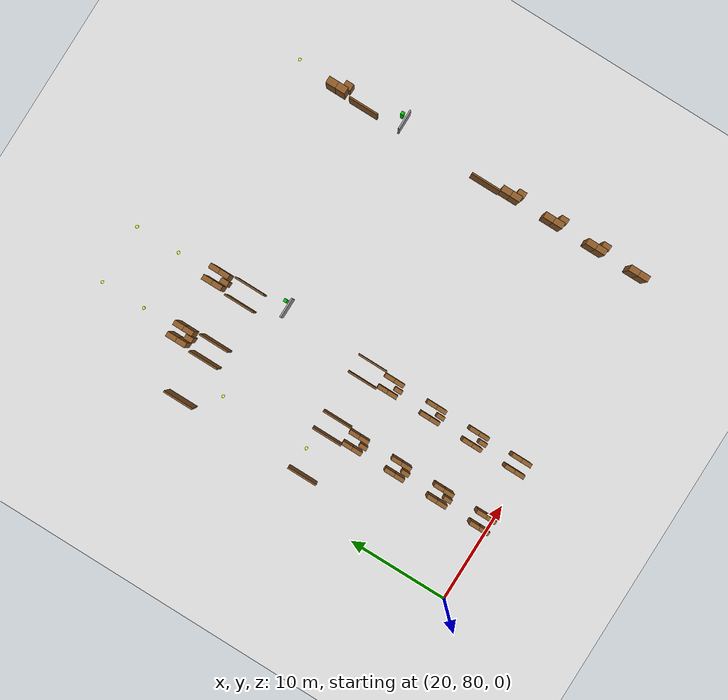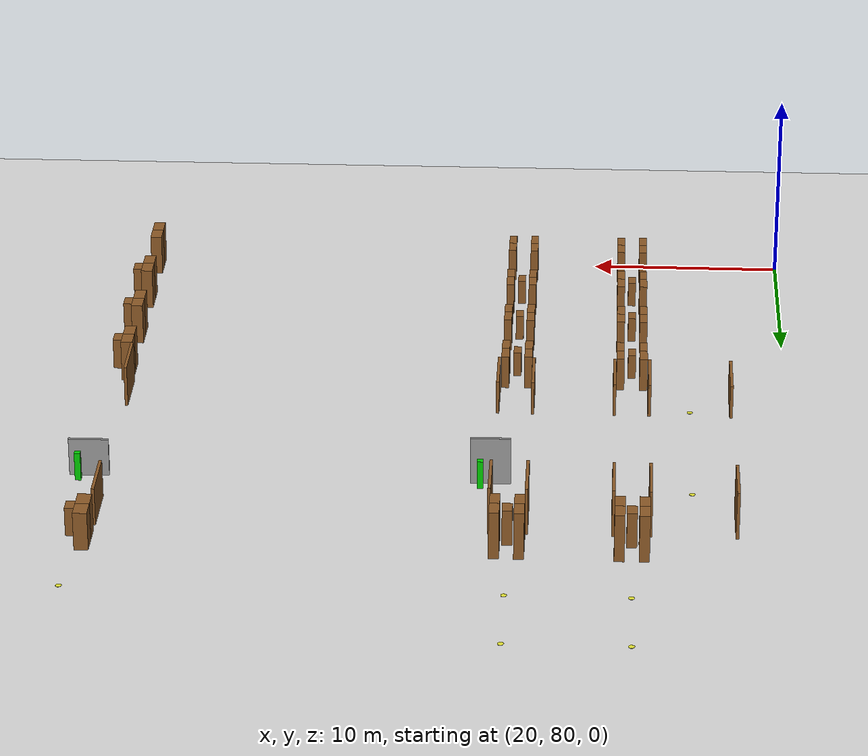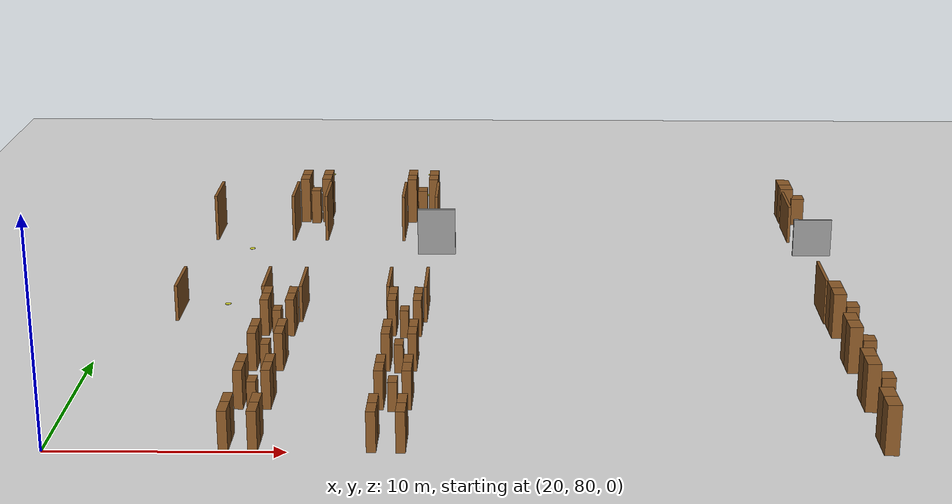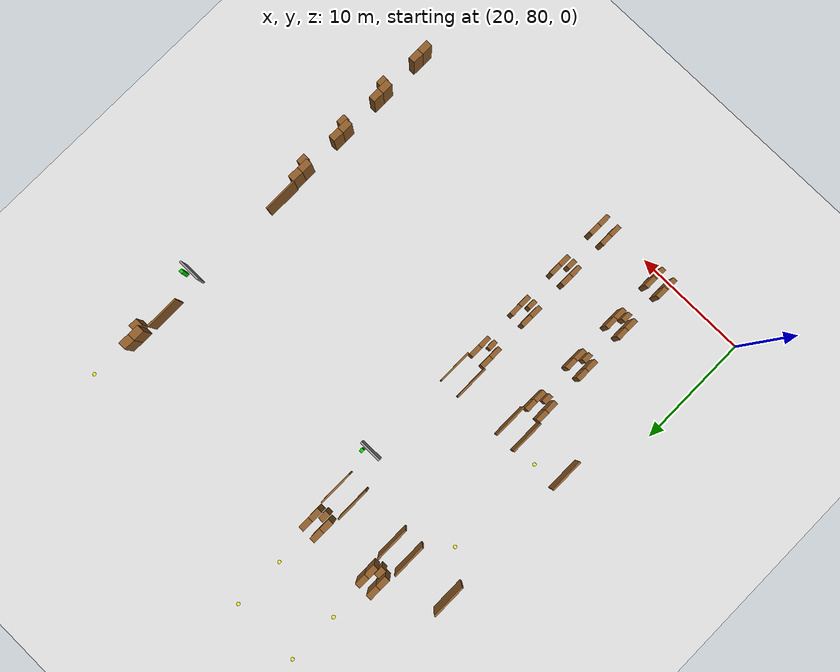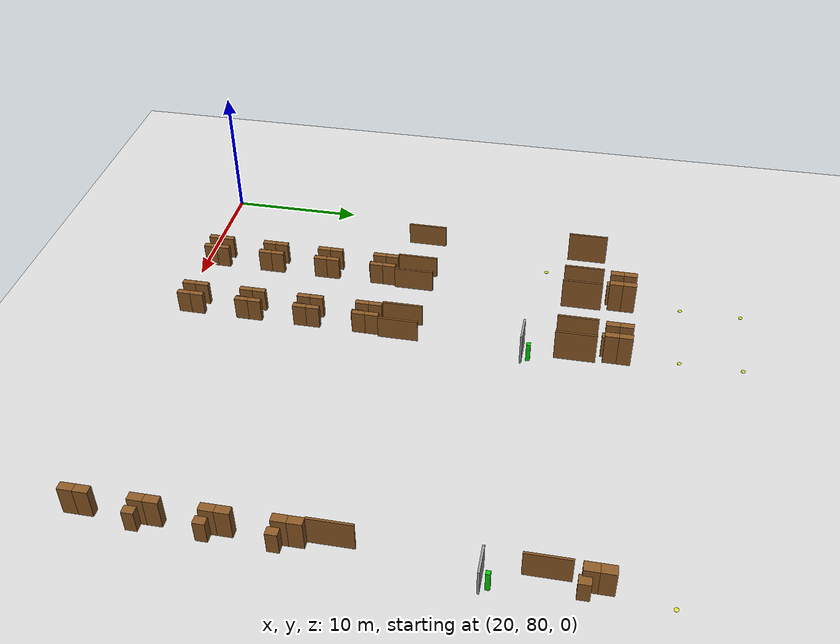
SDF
<sdf version="1.9">
 <world name="realistic_warehouse_150x200m">
  <model name="ground_plane">
   <static>true</static>
   <pose>68.5 102.0 0 0 0 0</pose>
   <link name="ground_link">
    <visual name="ground_visual">
     <geometry><box><size>127.0 194.0 0.01</size></box></geometry>
     <material><ambient>0.85 0.85 0.85 1.0</ambient><diffuse>0.85 0.85 0.85 1.0</diffuse></material>
    </visual>
    <collision name="ground_visual_collision">
     <geometry><box><size>127.0 194.0 0.01</size></box></geometry>
    </collision>
    <collision name="ground_collision">
     <geometry><plane><normal>0 0 1</normal><size>127.0 194.0</size></plane></geometry>
    </collision>
   </link>
  </model>
  <model name="dock_wall_Zone_D_C2_678">
   <static>true</static>
   <pose>35.0 106.2 1.25 0 0 0</pose>
   <link name="dock_wall_Zone_D_C2_678_link">
    <visual name="dock_wall_Zone_D_C2_678_vis">
     <geometry><box><size>2.0 0.15 2.5</size></box></geometry>
     <material><ambient>0.6 0.6 0.6 1.0</ambient><diffuse>0.6 0.6 0.6 1.0</diffuse></material>
    </visual>
    <collision name="dock_wall_Zone_D_C2_678_vis_collision">
     <geometry><box><size>2.0 0.15 2.5</size></box></geometry>
    </collision>
   </link>
  </model>
  <model name="charger_Zone_D_C2_679">
   <static>true</static>
   <pose>35.5 106.7 0.75 0 0 0</pose>
   <link name="charger_Zone_D_C2_679_link">
    <visual name="charger_Zone_D_C2_679_vis">
     <geometry><box><size>0.3 0.3 1.5</size></box></geometry>
     <material><ambient>0.0 0.8 0.0 1.0</ambient><diffuse>0.0 0.8 0.0 1.0</diffuse></material>
    </visual>
    <collision name="charger_Zone_D_C2_679_vis_collision">
     <geometry><box><size>0.3 0.3 1.5</size></box></geometry>
    </collision>
   </link>
  </model>
  <model name="cross_Zone_D_entry_680">
   <static>true</static>
   <pose>25.0 107.0 0.01 0 0 0</pose>
   <link name="cross_Zone_D_entry_680_link">
    <visual name="cross_Zone_D_entry_680_vis">
     <geometry><cylinder><radius>0.15</radius><length>0.02</length></cylinder></geometry>
     <material><ambient>0.9 0.9 0.2 1.0</ambient><diffuse>0.9 0.9 0.2 1.0</diffuse></material>
    </visual>
    <collision name="cross_Zone_D_entry_680_vis_collision">
     <geometry><cylinder><radius>0.15</radius><length>0.02</length></cylinder></geometry>
    </collision>
   </link>
  </model>
  <model name="aisle_R_Zone_D_A2_entry_722">
   <static>true</static>
   <pose>22.9 110.0 1.25 0 0 0</pose>
   <link name="aisle_R_Zone_D_A2_entry_722_link">
    <visual name="aisle_R_Zone_D_A2_entry_722_vis">
     <geometry><box><size>0.15 3.0 2.5</size></box></geometry>
     <material><ambient>0.55 0.35 0.15 1.0</ambient><diffuse>0.55 0.35 0.15 1.0</diffuse></material>
    </visual>
    <collision name="aisle_R_Zone_D_A2_entry_722_vis_collision">
     <geometry><box><size>0.15 3.0 2.5</size></box></geometry>
    </collision>
   </link>
  </model>
  <model name="aisle_L_Zone_D_A3_entry_741">
   <static>true</static>
   <pose>27.1 110.0 1.25 0 0 0</pose>
   <link name="aisle_L_Zone_D_A3_entry_741_link">
    <visual name="aisle_L_Zone_D_A3_entry_741_vis">
     <geometry><box><size>0.15 3.0 2.5</size></box></geometry>
     <material><ambient>0.55 0.35 0.15 1.0</ambient><diffuse>0.55 0.35 0.15 1.0</diffuse></material>
    </visual>
    <collision name="aisle_L_Zone_D_A3_entry_741_vis_collision">
     <geometry><box><size>0.15 3.0 2.5</size></box></geometry>
    </collision>
   </link>
  </model>
  <model name="aisle_R_Zone_D_A3_entry_742">
   <static>true</static>
   <pose>28.9 110.0 1.25 0 0 0</pose>
   <link name="aisle_R_Zone_D_A3_entry_742_link">
    <visual name="aisle_R_Zone_D_A3_entry_742_vis">
     <geometry><box><size>0.15 3.0 2.5</size></box></geometry>
     <material><ambient>0.55 0.35 0.15 1.0</ambient><diffuse>0.55 0.35 0.15 1.0</diffuse></material>
    </visual>
    <collision name="aisle_R_Zone_D_A3_entry_742_vis_collision">
     <geometry><box><size>0.15 3.0 2.5</size></box></geometry>
    </collision>
   </link>
  </model>
  <model name="rack_Zone_D_A3_S0_743">
   <static>true</static>
   <pose>27.4 112.5 1.25 0 0 0</pose>
   <link name="rack_Zone_D_A3_S0_743_link">
    <visual name="rack_Zone_D_A3_S0_743_vis">
     <geometry><box><size>0.5 1.0 2.5</size></box></geometry>
     <material><ambient>0.55 0.35 0.15 1.0</ambient><diffuse>0.55 0.35 0.15 1.0</diffuse></material>
    </visual>
    <collision name="rack_Zone_D_A3_S0_743_vis_collision">
     <geometry><box><size>0.5 1.0 2.5</size></box></geometry>
    </collision>
   </link>
  </model>
  <model name="rack_Zone_D_A3_S0_744">
   <static>true</static>
   <pose>27.4 113.5 1.25 0 0 0</pose>
   <link name="rack_Zone_D_A3_S0_744_link">
    <visual name="rack_Zone_D_A3_S0_744_vis">
     <geometry><box><size>0.5 1.0 2.5</size></box></geometry>
     <material><ambient>0.55 0.35 0.15 1.0</ambient><diffuse>0.55 0.35 0.15 1.0</diffuse></material>
    </visual>
    <collision name="rack_Zone_D_A3_S0_744_vis_collision">
     <geometry><box><size>0.5 1.0 2.5</size></box></geometry>
    </collision>
   </link>
  </model>
  <model name="rack_Zone_D_A3_S0_745">
   <static>true</static>
   <pose>28.6 112.5 1.25 0 0 0</pose>
   <link name="rack_Zone_D_A3_S0_745_link">
    <visual name="rack_Zone_D_A3_S0_745_vis">
     <geometry><box><size>0.5 1.0 2.5</size></box></geometry>
     <material><ambient>0.55 0.35 0.15 1.0</ambient><diffuse>0.55 0.35 0.15 1.0</diffuse></material>
    </visual>
    <collision name="rack_Zone_D_A3_S0_745_vis_collision">
     <geometry><box><size>0.5 1.0 2.5</size></box></geometry>
    </collision>
   </link>
  </model>
  <model name="rack_Zone_D_A3_S0_746">
   <static>true</static>
   <pose>28.6 113.5 1.25 0 0 0</pose>
   <link name="rack_Zone_D_A3_S0_746_link">
    <visual name="rack_Zone_D_A3_S0_746_vis">
     <geometry><box><size>0.5 1.0 2.5</size></box></geometry>
     <material><ambient>0.55 0.35 0.15 1.0</ambient><diffuse>0.55 0.35 0.15 1.0</diffuse></material>
    </visual>
    <collision name="rack_Zone_D_A3_S0_746_vis_collision">
     <geometry><box><size>0.5 1.0 2.5</size></box></geometry>
    </collision>
   </link>
  </model>
  <model name="rack_Zone_D_A3_S0_747">
   <static>true</static>
   <pose>28.0 112.2 0.9375 0 0 0</pose>
   <link name="rack_Zone_D_A3_S0_747_link">
    <visual name="rack_Zone_D_A3_S0_747_vis">
     <geometry><box><size>0.5 0.8 1.875</size></box></geometry>
     <material><ambient>0.55 0.35 0.15 1.0</ambient><diffuse>0.55 0.35 0.15 1.0</diffuse></material>
    </visual>
    <collision name="rack_Zone_D_A3_S0_747_vis_collision">
     <geometry><box><size>0.5 0.8 1.875</size></box></geometry>
    </collision>
   </link>
  </model>
  <model name="cross_Zone_D_A3_S1_748">
   <static>true</static>
   <pose>28.0 117.5 0.01 0 0 0</pose>
   <link name="cross_Zone_D_A3_S1_748_link">
    <visual name="cross_Zone_D_A3_S1_748_vis">
     <geometry><cylinder><radius>0.15</radius><length>0.02</length></cylinder></geometry>
     <material><ambient>0.9 0.9 0.2 1.0</ambient><diffuse>0.9 0.9 0.2 1.0</diffuse></material>
    </visual>
    <collision name="cross_Zone_D_A3_S1_748_vis_collision">
     <geometry><cylinder><radius>0.15</radius><length>0.02</length></cylinder></geometry>
    </collision>
   </link>
  </model>
  <model name="gap_Zone_D_A3_S2_749">
   <static>true</static>
   <pose>28.0 122.0 0.01 0 0 0</pose>
   <link name="gap_Zone_D_A3_S2_749_link">
    <visual name="gap_Zone_D_A3_S2_749_vis">
     <geometry><cylinder><radius>0.15</radius><length>0.02</length></cylinder></geometry>
     <material><ambient>0.9 0.9 0.2 1.0</ambient><diffuse>0.9 0.9 0.2 1.0</diffuse></material>
    </visual>
    <collision name="gap_Zone_D_A3_S2_749_vis_collision">
     <geometry><cylinder><radius>0.15</radius><length>0.02</length></cylinder></geometry>
    </collision>
   </link>
  </model>
  <model name="aisle_L_Zone_D_A4_entry_761">
   <static>true</static>
   <pose>33.1 110.0 1.25 0 0 0</pose>
   <link name="aisle_L_Zone_D_A4_entry_761_link">
    <visual name="aisle_L_Zone_D_A4_entry_761_vis">
     <geometry><box><size>0.15 3.0 2.5</size></box></geometry>
     <material><ambient>0.55 0.35 0.15 1.0</ambient><diffuse>0.55 0.35 0.15 1.0</diffuse></material>
    </visual>
    <collision name="aisle_L_Zone_D_A4_entry_761_vis_collision">
     <geometry><box><size>0.15 3.0 2.5</size></box></geometry>
    </collision>
   </link>
  </model>
  <model name="aisle_R_Zone_D_A4_entry_762">
   <static>true</static>
   <pose>34.9 110.0 1.25 0 0 0</pose>
   <link name="aisle_R_Zone_D_A4_entry_762_link">
    <visual name="aisle_R_Zone_D_A4_entry_762_vis">
     <geometry><box><size>0.15 3.0 2.5</size></box></geometry>
     <material><ambient>0.55 0.35 0.15 1.0</ambient><diffuse>0.55 0.35 0.15 1.0</diffuse></material>
    </visual>
    <collision name="aisle_R_Zone_D_A4_entry_762_vis_collision">
     <geometry><box><size>0.15 3.0 2.5</size></box></geometry>
    </collision>
   </link>
  </model>
  <model name="rack_Zone_D_A4_S0_763">
   <static>true</static>
   <pose>33.4 112.5 1.25 0 0 0</pose>
   <link name="rack_Zone_D_A4_S0_763_link">
    <visual name="rack_Zone_D_A4_S0_763_vis">
     <geometry><box><size>0.5 1.0 2.5</size></box></geometry>
     <material><ambient>0.55 0.35 0.15 1.0</ambient><diffuse>0.55 0.35 0.15 1.0</diffuse></material>
    </visual>
    <collision name="rack_Zone_D_A4_S0_763_vis_collision">
     <geometry><box><size>0.5 1.0 2.5</size></box></geometry>
    </collision>
   </link>
  </model>
  <model name="rack_Zone_D_A4_S0_764">
   <static>true</static>
   <pose>33.4 113.5 1.25 0 0 0</pose>
   <link name="rack_Zone_D_A4_S0_764_link">
    <visual name="rack_Zone_D_A4_S0_764_vis">
     <geometry><box><size>0.5 1.0 2.5</size></box></geometry>
     <material><ambient>0.55 0.35 0.15 1.0</ambient><diffuse>0.55 0.35 0.15 1.0</diffuse></material>
    </visual>
    <collision name="rack_Zone_D_A4_S0_764_vis_collision">
     <geometry><box><size>0.5 1.0 2.5</size></box></geometry>
    </collision>
   </link>
  </model>
  <model name="rack_Zone_D_A4_S0_765">
   <static>true</static>
   <pose>34.6 112.5 1.25 0 0 0</pose>
   <link name="rack_Zone_D_A4_S0_765_link">
    <visual name="rack_Zone_D_A4_S0_765_vis">
     <geometry><box><size>0.5 1.0 2.5</size></box></geometry>
     <material><ambient>0.55 0.35 0.15 1.0</ambient><diffuse>0.55 0.35 0.15 1.0</diffuse></material>
    </visual>
    <collision name="rack_Zone_D_A4_S0_765_vis_collision">
     <geometry><box><size>0.5 1.0 2.5</size></box></geometry>
    </collision>
   </link>
  </model>
  <model name="rack_Zone_D_A4_S0_766">
   <static>true</static>
   <pose>34.6 113.5 1.25 0 0 0</pose>
   <link name="rack_Zone_D_A4_S0_766_link">
    <visual name="rack_Zone_D_A4_S0_766_vis">
     <geometry><box><size>0.5 1.0 2.5</size></box></geometry>
     <material><ambient>0.55 0.35 0.15 1.0</ambient><diffuse>0.55 0.35 0.15 1.0</diffuse></material>
    </visual>
    <collision name="rack_Zone_D_A4_S0_766_vis_collision">
     <geometry><box><size>0.5 1.0 2.5</size></box></geometry>
    </collision>
   </link>
  </model>
  <model name="rack_Zone_D_A4_S0_767">
   <static>true</static>
   <pose>34.0 112.2 0.9375 0 0 0</pose>
   <link name="rack_Zone_D_A4_S0_767_link">
    <visual name="rack_Zone_D_A4_S0_767_vis">
     <geometry><box><size>0.5 0.8 1.875</size></box></geometry>
     <material><ambient>0.55 0.35 0.15 1.0</ambient><diffuse>0.55 0.35 0.15 1.0</diffuse></material>
    </visual>
    <collision name="rack_Zone_D_A4_S0_767_vis_collision">
     <geometry><box><size>0.5 0.8 1.875</size></box></geometry>
    </collision>
   </link>
  </model>
  <model name="cross_Zone_D_A4_S1_768">
   <static>true</static>
   <pose>34.0 117.5 0.01 0 0 0</pose>
   <link name="cross_Zone_D_A4_S1_768_link">
    <visual name="cross_Zone_D_A4_S1_768_vis">
     <geometry><cylinder><radius>0.15</radius><length>0.02</length></cylinder></geometry>
     <material><ambient>0.9 0.9 0.2 1.0</ambient><diffuse>0.9 0.9 0.2 1.0</diffuse></material>
    </visual>
    <collision name="cross_Zone_D_A4_S1_768_vis_collision">
     <geometry><cylinder><radius>0.15</radius><length>0.02</length></cylinder></geometry>
    </collision>
   </link>
  </model>
  <model name="gap_Zone_D_A4_S2_769">
   <static>true</static>
   <pose>34.0 122.0 0.01 0 0 0</pose>
   <link name="gap_Zone_D_A4_S2_769_link">
    <visual name="gap_Zone_D_A4_S2_769_vis">
     <geometry><cylinder><radius>0.15</radius><length>0.02</length></cylinder></geometry>
     <material><ambient>0.9 0.9 0.2 1.0</ambient><diffuse>0.9 0.9 0.2 1.0</diffuse></material>
    </visual>
    <collision name="gap_Zone_D_A4_S2_769_vis_collision">
     <geometry><cylinder><radius>0.15</radius><length>0.02</length></cylinder></geometry>
    </collision>
   </link>
  </model>
  <model name="dock_wall_Zone_E_C1_781">
   <static>true</static>
   <pose>55.0 106.2 1.0 0 0 0</pose>
   <link name="dock_wall_Zone_E_C1_781_link">
    <visual name="dock_wall_Zone_E_C1_781_vis">
     <geometry><box><size>2.0 0.15 2.0</size></box></geometry>
     <material><ambient>0.6 0.6 0.6 1.0</ambient><diffuse>0.6 0.6 0.6 1.0</diffuse></material>
    </visual>
    <collision name="dock_wall_Zone_E_C1_781_vis_collision">
     <geometry><box><size>2.0 0.15 2.0</size></box></geometry>
    </collision>
   </link>
  </model>
  <model name="charger_Zone_E_C1_782">
   <static>true</static>
   <pose>55.5 106.7 0.75 0 0 0</pose>
   <link name="charger_Zone_E_C1_782_link">
    <visual name="charger_Zone_E_C1_782_vis">
     <geometry><box><size>0.3 0.3 1.5</size></box></geometry>
     <material><ambient>0.0 0.8 0.0 1.0</ambient><diffuse>0.0 0.8 0.0 1.0</diffuse></material>
    </visual>
    <collision name="charger_Zone_E_C1_782_vis_collision">
     <geometry><box><size>0.3 0.3 1.5</size></box></geometry>
    </collision>
   </link>
  </model>
  <model name="aisle_L_Zone_E_A0_entry_786">
   <static>true</static>
   <pose>54.1 110.0 1.0 0 0 0</pose>
   <link name="aisle_L_Zone_E_A0_entry_786_link">
    <visual name="aisle_L_Zone_E_A0_entry_786_vis">
     <geometry><box><size>0.15 3.0 2.0</size></box></geometry>
     <material><ambient>0.55 0.35 0.15 1.0</ambient><diffuse>0.55 0.35 0.15 1.0</diffuse></material>
    </visual>
    <collision name="aisle_L_Zone_E_A0_entry_786_vis_collision">
     <geometry><box><size>0.15 3.0 2.0</size></box></geometry>
    </collision>
   </link>
  </model>
  <model name="rack_Zone_E_A0_S0_788">
   <static>true</static>
   <pose>54.4 112.5 1.0 0 0 0</pose>
   <link name="rack_Zone_E_A0_S0_788_link">
    <visual name="rack_Zone_E_A0_S0_788_vis">
     <geometry><box><size>0.7 1.0 2.0</size></box></geometry>
     <material><ambient>0.55 0.35 0.15 1.0</ambient><diffuse>0.55 0.35 0.15 1.0</diffuse></material>
    </visual>
    <collision name="rack_Zone_E_A0_S0_788_vis_collision">
     <geometry><box><size>0.7 1.0 2.0</size></box></geometry>
    </collision>
   </link>
  </model>
  <model name="rack_Zone_E_A0_S0_789">
   <static>true</static>
   <pose>54.4 113.5 1.0 0 0 0</pose>
   <link name="rack_Zone_E_A0_S0_789_link">
    <visual name="rack_Zone_E_A0_S0_789_vis">
     <geometry><box><size>0.7 1.0 2.0</size></box></geometry>
     <material><ambient>0.55 0.35 0.15 1.0</ambient><diffuse>0.55 0.35 0.15 1.0</diffuse></material>
    </visual>
    <collision name="rack_Zone_E_A0_S0_789_vis_collision">
     <geometry><box><size>0.7 1.0 2.0</size></box></geometry>
    </collision>
   </link>
  </model>
  <model name="rack_Zone_E_A0_S0_792">
   <static>true</static>
   <pose>55.0 112.2 0.75 0 0 0</pose>
   <link name="rack_Zone_E_A0_S0_792_link">
    <visual name="rack_Zone_E_A0_S0_792_vis">
     <geometry><box><size>0.7 0.8 1.5</size></box></geometry>
     <material><ambient>0.55 0.35 0.15 1.0</ambient><diffuse>0.55 0.35 0.15 1.0</diffuse></material>
    </visual>
    <collision name="rack_Zone_E_A0_S0_792_vis_collision">
     <geometry><box><size>0.7 0.8 1.5</size></box></geometry>
    </collision>
   </link>
  </model>
  <model name="cross_Zone_E_A0_S1_793">
   <static>true</static>
   <pose>55.0 117.5 0.01 0 0 0</pose>
   <link name="cross_Zone_E_A0_S1_793_link">
    <visual name="cross_Zone_E_A0_S1_793_vis">
     <geometry><cylinder><radius>0.15</radius><length>0.02</length></cylinder></geometry>
     <material><ambient>0.9 0.9 0.2 1.0</ambient><diffuse>0.9 0.9 0.2 1.0</diffuse></material>
    </visual>
    <collision name="cross_Zone_E_A0_S1_793_vis_collision">
     <geometry><cylinder><radius>0.15</radius><length>0.02</length></cylinder></geometry>
    </collision>
   </link>
  </model>
  <model name="aisle_R_Zone_G_A2_exit_1127">
   <static>true</static>
   <pose>22.9 97.0 0.9 0 0 0</pose>
   <link name="aisle_R_Zone_G_A2_exit_1127_link">
    <visual name="aisle_R_Zone_G_A2_exit_1127_vis">
     <geometry><box><size>0.15 3.0 1.8</size></box></geometry>
     <material><ambient>0.55 0.35 0.15 1.0</ambient><diffuse>0.55 0.35 0.15 1.0</diffuse></material>
    </visual>
    <collision name="aisle_R_Zone_G_A2_exit_1127_vis_collision">
     <geometry><box><size>0.15 3.0 1.8</size></box></geometry>
    </collision>
   </link>
  </model>
  <model name="rack_Zone_G_A3_S4_1150">
   <static>true</static>
   <pose>27.4 80.5 0.9 0 0 0</pose>
   <link name="rack_Zone_G_A3_S4_1150_link">
    <visual name="rack_Zone_G_A3_S4_1150_vis">
     <geometry><box><size>0.4 1.0 1.8</size></box></geometry>
     <material><ambient>0.55 0.35 0.15 1.0</ambient><diffuse>0.55 0.35 0.15 1.0</diffuse></material>
    </visual>
    <collision name="rack_Zone_G_A3_S4_1150_vis_collision">
     <geometry><box><size>0.4 1.0 1.8</size></box></geometry>
    </collision>
   </link>
  </model>
  <model name="rack_Zone_G_A3_S4_1151">
   <static>true</static>
   <pose>27.4 81.5 0.9 0 0 0</pose>
   <link name="rack_Zone_G_A3_S4_1151_link">
    <visual name="rack_Zone_G_A3_S4_1151_vis">
     <geometry><box><size>0.4 1.0 1.8</size></box></geometry>
     <material><ambient>0.55 0.35 0.15 1.0</ambient><diffuse>0.55 0.35 0.15 1.0</diffuse></material>
    </visual>
    <collision name="rack_Zone_G_A3_S4_1151_vis_collision">
     <geometry><box><size>0.4 1.0 1.8</size></box></geometry>
    </collision>
   </link>
  </model>
  <model name="rack_Zone_G_A3_S4_1152">
   <static>true</static>
   <pose>28.6 80.5 0.9 0 0 0</pose>
   <link name="rack_Zone_G_A3_S4_1152_link">
    <visual name="rack_Zone_G_A3_S4_1152_vis">
     <geometry><box><size>0.4 1.0 1.8</size></box></geometry>
     <material><ambient>0.55 0.35 0.15 1.0</ambient><diffuse>0.55 0.35 0.15 1.0</diffuse></material>
    </visual>
    <collision name="rack_Zone_G_A3_S4_1152_vis_collision">
     <geometry><box><size>0.4 1.0 1.8</size></box></geometry>
    </collision>
   </link>
  </model>
  <model name="rack_Zone_G_A3_S4_1153">
   <static>true</static>
   <pose>28.6 81.5 0.9 0 0 0</pose>
   <link name="rack_Zone_G_A3_S4_1153_link">
    <visual name="rack_Zone_G_A3_S4_1153_vis">
     <geometry><box><size>0.4 1.0 1.8</size></box></geometry>
     <material><ambient>0.55 0.35 0.15 1.0</ambient><diffuse>0.55 0.35 0.15 1.0</diffuse></material>
    </visual>
    <collision name="rack_Zone_G_A3_S4_1153_vis_collision">
     <geometry><box><size>0.4 1.0 1.8</size></box></geometry>
    </collision>
   </link>
  </model>
  <model name="rack_Zone_G_A3_S5_1155">
   <static>true</static>
   <pose>27.4 85.0 0.9 0 0 0</pose>
   <link name="rack_Zone_G_A3_S5_1155_link">
    <visual name="rack_Zone_G_A3_S5_1155_vis">
     <geometry><box><size>0.4 1.0 1.8</size></box></geometry>
     <material><ambient>0.55 0.35 0.15 1.0</ambient><diffuse>0.55 0.35 0.15 1.0</diffuse></material>
    </visual>
    <collision name="rack_Zone_G_A3_S5_1155_vis_collision">
     <geometry><box><size>0.4 1.0 1.8</size></box></geometry>
    </collision>
   </link>
  </model>
  <model name="rack_Zone_G_A3_S5_1156">
   <static>true</static>
   <pose>27.4 86.0 0.9 0 0 0</pose>
   <link name="rack_Zone_G_A3_S5_1156_link">
    <visual name="rack_Zone_G_A3_S5_1156_vis">
     <geometry><box><size>0.4 1.0 1.8</size></box></geometry>
     <material><ambient>0.55 0.35 0.15 1.0</ambient><diffuse>0.55 0.35 0.15 1.0</diffuse></material>
    </visual>
    <collision name="rack_Zone_G_A3_S5_1156_vis_collision">
     <geometry><box><size>0.4 1.0 1.8</size></box></geometry>
    </collision>
   </link>
  </model>
  <model name="rack_Zone_G_A3_S5_1157">
   <static>true</static>
   <pose>28.6 85.0 0.9 0 0 0</pose>
   <link name="rack_Zone_G_A3_S5_1157_link">
    <visual name="rack_Zone_G_A3_S5_1157_vis">
     <geometry><box><size>0.4 1.0 1.8</size></box></geometry>
     <material><ambient>0.55 0.35 0.15 1.0</ambient><diffuse>0.55 0.35 0.15 1.0</diffuse></material>
    </visual>
    <collision name="rack_Zone_G_A3_S5_1157_vis_collision">
     <geometry><box><size>0.4 1.0 1.8</size></box></geometry>
    </collision>
   </link>
  </model>
  <model name="rack_Zone_G_A3_S5_1158">
   <static>true</static>
   <pose>28.6 86.0 0.9 0 0 0</pose>
   <link name="rack_Zone_G_A3_S5_1158_link">
    <visual name="rack_Zone_G_A3_S5_1158_vis">
     <geometry><box><size>0.4 1.0 1.8</size></box></geometry>
     <material><ambient>0.55 0.35 0.15 1.0</ambient><diffuse>0.55 0.35 0.15 1.0</diffuse></material>
    </visual>
    <collision name="rack_Zone_G_A3_S5_1158_vis_collision">
     <geometry><box><size>0.4 1.0 1.8</size></box></geometry>
    </collision>
   </link>
  </model>
  <model name="rack_Zone_G_A3_S5_1159">
   <static>true</static>
   <pose>28.0 84.7 0.675 0 0 0</pose>
   <link name="rack_Zone_G_A3_S5_1159_link">
    <visual name="rack_Zone_G_A3_S5_1159_vis">
     <geometry><box><size>0.4 0.8 1.35</size></box></geometry>
     <material><ambient>0.55 0.35 0.15 1.0</ambient><diffuse>0.55 0.35 0.15 1.0</diffuse></material>
    </visual>
    <collision name="rack_Zone_G_A3_S5_1159_vis_collision">
     <geometry><box><size>0.4 0.8 1.35</size></box></geometry>
    </collision>
   </link>
  </model>
  <model name="rack_Zone_G_A3_S6_1160">
   <static>true</static>
   <pose>27.4 89.5 0.9 0 0 0</pose>
   <link name="rack_Zone_G_A3_S6_1160_link">
    <visual name="rack_Zone_G_A3_S6_1160_vis">
     <geometry><box><size>0.4 1.0 1.8</size></box></geometry>
     <material><ambient>0.55 0.35 0.15 1.0</ambient><diffuse>0.55 0.35 0.15 1.0</diffuse></material>
    </visual>
    <collision name="rack_Zone_G_A3_S6_1160_vis_collision">
     <geometry><box><size>0.4 1.0 1.8</size></box></geometry>
    </collision>
   </link>
  </model>
  <model name="rack_Zone_G_A3_S6_1161">
   <static>true</static>
   <pose>27.4 90.5 0.9 0 0 0</pose>
   <link name="rack_Zone_G_A3_S6_1161_link">
    <visual name="rack_Zone_G_A3_S6_1161_vis">
     <geometry><box><size>0.4 1.0 1.8</size></box></geometry>
     <material><ambient>0.55 0.35 0.15 1.0</ambient><diffuse>0.55 0.35 0.15 1.0</diffuse></material>
    </visual>
    <collision name="rack_Zone_G_A3_S6_1161_vis_collision">
     <geometry><box><size>0.4 1.0 1.8</size></box></geometry>
    </collision>
   </link>
  </model>
  <model name="rack_Zone_G_A3_S6_1162">
   <static>true</static>
   <pose>28.6 89.5 0.9 0 0 0</pose>
   <link name="rack_Zone_G_A3_S6_1162_link">
    <visual name="rack_Zone_G_A3_S6_1162_vis">
     <geometry><box><size>0.4 1.0 1.8</size></box></geometry>
     <material><ambient>0.55 0.35 0.15 1.0</ambient><diffuse>0.55 0.35 0.15 1.0</diffuse></material>
    </visual>
    <collision name="rack_Zone_G_A3_S6_1162_vis_collision">
     <geometry><box><size>0.4 1.0 1.8</size></box></geometry>
    </collision>
   </link>
  </model>
  <model name="rack_Zone_G_A3_S6_1163">
   <static>true</static>
   <pose>28.6 90.5 0.9 0 0 0</pose>
   <link name="rack_Zone_G_A3_S6_1163_link">
    <visual name="rack_Zone_G_A3_S6_1163_vis">
     <geometry><box><size>0.4 1.0 1.8</size></box></geometry>
     <material><ambient>0.55 0.35 0.15 1.0</ambient><diffuse>0.55 0.35 0.15 1.0</diffuse></material>
    </visual>
    <collision name="rack_Zone_G_A3_S6_1163_vis_collision">
     <geometry><box><size>0.4 1.0 1.8</size></box></geometry>
    </collision>
   </link>
  </model>
  <model name="rack_Zone_G_A3_S6_1164">
   <static>true</static>
   <pose>28.0 89.2 0.675 0 0 0</pose>
   <link name="rack_Zone_G_A3_S6_1164_link">
    <visual name="rack_Zone_G_A3_S6_1164_vis">
     <geometry><box><size>0.4 0.8 1.35</size></box></geometry>
     <material><ambient>0.55 0.35 0.15 1.0</ambient><diffuse>0.55 0.35 0.15 1.0</diffuse></material>
    </visual>
    <collision name="rack_Zone_G_A3_S6_1164_vis_collision">
     <geometry><box><size>0.4 0.8 1.35</size></box></geometry>
    </collision>
   </link>
  </model>
  <model name="rack_Zone_G_A3_S7_1165">
   <static>true</static>
   <pose>27.4 94.0 0.9 0 0 0</pose>
   <link name="rack_Zone_G_A3_S7_1165_link">
    <visual name="rack_Zone_G_A3_S7_1165_vis">
     <geometry><box><size>0.4 1.0 1.8</size></box></geometry>
     <material><ambient>0.55 0.35 0.15 1.0</ambient><diffuse>0.55 0.35 0.15 1.0</diffuse></material>
    </visual>
    <collision name="rack_Zone_G_A3_S7_1165_vis_collision">
     <geometry><box><size>0.4 1.0 1.8</size></box></geometry>
    </collision>
   </link>
  </model>
  <model name="rack_Zone_G_A3_S7_1166">
   <static>true</static>
   <pose>27.4 95.0 0.9 0 0 0</pose>
   <link name="rack_Zone_G_A3_S7_1166_link">
    <visual name="rack_Zone_G_A3_S7_1166_vis">
     <geometry><box><size>0.4 1.0 1.8</size></box></geometry>
     <material><ambient>0.55 0.35 0.15 1.0</ambient><diffuse>0.55 0.35 0.15 1.0</diffuse></material>
    </visual>
    <collision name="rack_Zone_G_A3_S7_1166_vis_collision">
     <geometry><box><size>0.4 1.0 1.8</size></box></geometry>
    </collision>
   </link>
  </model>
  <model name="rack_Zone_G_A3_S7_1167">
   <static>true</static>
   <pose>28.6 94.0 0.9 0 0 0</pose>
   <link name="rack_Zone_G_A3_S7_1167_link">
    <visual name="rack_Zone_G_A3_S7_1167_vis">
     <geometry><box><size>0.4 1.0 1.8</size></box></geometry>
     <material><ambient>0.55 0.35 0.15 1.0</ambient><diffuse>0.55 0.35 0.15 1.0</diffuse></material>
    </visual>
    <collision name="rack_Zone_G_A3_S7_1167_vis_collision">
     <geometry><box><size>0.4 1.0 1.8</size></box></geometry>
    </collision>
   </link>
  </model>
  <model name="rack_Zone_G_A3_S7_1168">
   <static>true</static>
   <pose>28.6 95.0 0.9 0 0 0</pose>
   <link name="rack_Zone_G_A3_S7_1168_link">
    <visual name="rack_Zone_G_A3_S7_1168_vis">
     <geometry><box><size>0.4 1.0 1.8</size></box></geometry>
     <material><ambient>0.55 0.35 0.15 1.0</ambient><diffuse>0.55 0.35 0.15 1.0</diffuse></material>
    </visual>
    <collision name="rack_Zone_G_A3_S7_1168_vis_collision">
     <geometry><box><size>0.4 1.0 1.8</size></box></geometry>
    </collision>
   </link>
  </model>
  <model name="rack_Zone_G_A3_S7_1169">
   <static>true</static>
   <pose>28.0 93.7 0.675 0 0 0</pose>
   <link name="rack_Zone_G_A3_S7_1169_link">
    <visual name="rack_Zone_G_A3_S7_1169_vis">
     <geometry><box><size>0.4 0.8 1.35</size></box></geometry>
     <material><ambient>0.55 0.35 0.15 1.0</ambient><diffuse>0.55 0.35 0.15 1.0</diffuse></material>
    </visual>
    <collision name="rack_Zone_G_A3_S7_1169_vis_collision">
     <geometry><box><size>0.4 0.8 1.35</size></box></geometry>
    </collision>
   </link>
  </model>
  <model name="aisle_L_Zone_G_A3_exit_1170">
   <static>true</static>
   <pose>27.1 97.0 0.9 0 0 0</pose>
   <link name="aisle_L_Zone_G_A3_exit_1170_link">
    <visual name="aisle_L_Zone_G_A3_exit_1170_vis">
     <geometry><box><size>0.15 3.0 1.8</size></box></geometry>
     <material><ambient>0.55 0.35 0.15 1.0</ambient><diffuse>0.55 0.35 0.15 1.0</diffuse></material>
    </visual>
    <collision name="aisle_L_Zone_G_A3_exit_1170_vis_collision">
     <geometry><box><size>0.15 3.0 1.8</size></box></geometry>
    </collision>
   </link>
  </model>
  <model name="aisle_R_Zone_G_A3_exit_1171">
   <static>true</static>
   <pose>28.9 97.0 0.9 0 0 0</pose>
   <link name="aisle_R_Zone_G_A3_exit_1171_link">
    <visual name="aisle_R_Zone_G_A3_exit_1171_vis">
     <geometry><box><size>0.15 3.0 1.8</size></box></geometry>
     <material><ambient>0.55 0.35 0.15 1.0</ambient><diffuse>0.55 0.35 0.15 1.0</diffuse></material>
    </visual>
    <collision name="aisle_R_Zone_G_A3_exit_1171_vis_collision">
     <geometry><box><size>0.15 3.0 1.8</size></box></geometry>
    </collision>
   </link>
  </model>
  <model name="rack_Zone_G_A4_S4_1194">
   <static>true</static>
   <pose>33.4 80.5 0.9 0 0 0</pose>
   <link name="rack_Zone_G_A4_S4_1194_link">
    <visual name="rack_Zone_G_A4_S4_1194_vis">
     <geometry><box><size>0.4 1.0 1.8</size></box></geometry>
     <material><ambient>0.55 0.35 0.15 1.0</ambient><diffuse>0.55 0.35 0.15 1.0</diffuse></material>
    </visual>
    <collision name="rack_Zone_G_A4_S4_1194_vis_collision">
     <geometry><box><size>0.4 1.0 1.8</size></box></geometry>
    </collision>
   </link>
  </model>
  <model name="rack_Zone_G_A4_S4_1195">
   <static>true</static>
   <pose>33.4 81.5 0.9 0 0 0</pose>
   <link name="rack_Zone_G_A4_S4_1195_link">
    <visual name="rack_Zone_G_A4_S4_1195_vis">
     <geometry><box><size>0.4 1.0 1.8</size></box></geometry>
     <material><ambient>0.55 0.35 0.15 1.0</ambient><diffuse>0.55 0.35 0.15 1.0</diffuse></material>
    </visual>
    <collision name="rack_Zone_G_A4_S4_1195_vis_collision">
     <geometry><box><size>0.4 1.0 1.8</size></box></geometry>
    </collision>
   </link>
  </model>
  <model name="rack_Zone_G_A4_S4_1196">
   <static>true</static>
   <pose>34.6 80.5 0.9 0 0 0</pose>
   <link name="rack_Zone_G_A4_S4_1196_link">
    <visual name="rack_Zone_G_A4_S4_1196_vis">
     <geometry><box><size>0.4 1.0 1.8</size></box></geometry>
     <material><ambient>0.55 0.35 0.15 1.0</ambient><diffuse>0.55 0.35 0.15 1.0</diffuse></material>
    </visual>
    <collision name="rack_Zone_G_A4_S4_1196_vis_collision">
     <geometry><box><size>0.4 1.0 1.8</size></box></geometry>
    </collision>
   </link>
  </model>
  <model name="rack_Zone_G_A4_S4_1197">
   <static>true</static>
   <pose>34.6 81.5 0.9 0 0 0</pose>
   <link name="rack_Zone_G_A4_S4_1197_link">
    <visual name="rack_Zone_G_A4_S4_1197_vis">
     <geometry><box><size>0.4 1.0 1.8</size></box></geometry>
     <material><ambient>0.55 0.35 0.15 1.0</ambient><diffuse>0.55 0.35 0.15 1.0</diffuse></material>
    </visual>
    <collision name="rack_Zone_G_A4_S4_1197_vis_collision">
     <geometry><box><size>0.4 1.0 1.8</size></box></geometry>
    </collision>
   </link>
  </model>
  <model name="rack_Zone_G_A4_S5_1199">
   <static>true</static>
   <pose>33.4 85.0 0.9 0 0 0</pose>
   <link name="rack_Zone_G_A4_S5_1199_link">
    <visual name="rack_Zone_G_A4_S5_1199_vis">
     <geometry><box><size>0.4 1.0 1.8</size></box></geometry>
     <material><ambient>0.55 0.35 0.15 1.0</ambient><diffuse>0.55 0.35 0.15 1.0</diffuse></material>
    </visual>
    <collision name="rack_Zone_G_A4_S5_1199_vis_collision">
     <geometry><box><size>0.4 1.0 1.8</size></box></geometry>
    </collision>
   </link>
  </model>
  <model name="rack_Zone_G_A4_S5_1200">
   <static>true</static>
   <pose>33.4 86.0 0.9 0 0 0</pose>
   <link name="rack_Zone_G_A4_S5_1200_link">
    <visual name="rack_Zone_G_A4_S5_1200_vis">
     <geometry><box><size>0.4 1.0 1.8</size></box></geometry>
     <material><ambient>0.55 0.35 0.15 1.0</ambient><diffuse>0.55 0.35 0.15 1.0</diffuse></material>
    </visual>
    <collision name="rack_Zone_G_A4_S5_1200_vis_collision">
     <geometry><box><size>0.4 1.0 1.8</size></box></geometry>
    </collision>
   </link>
  </model>
  <model name="rack_Zone_G_A4_S5_1201">
   <static>true</static>
   <pose>34.6 85.0 0.9 0 0 0</pose>
   <link name="rack_Zone_G_A4_S5_1201_link">
    <visual name="rack_Zone_G_A4_S5_1201_vis">
     <geometry><box><size>0.4 1.0 1.8</size></box></geometry>
     <material><ambient>0.55 0.35 0.15 1.0</ambient><diffuse>0.55 0.35 0.15 1.0</diffuse></material>
    </visual>
    <collision name="rack_Zone_G_A4_S5_1201_vis_collision">
     <geometry><box><size>0.4 1.0 1.8</size></box></geometry>
    </collision>
   </link>
  </model>
  <model name="rack_Zone_G_A4_S5_1202">
   <static>true</static>
   <pose>34.6 86.0 0.9 0 0 0</pose>
   <link name="rack_Zone_G_A4_S5_1202_link">
    <visual name="rack_Zone_G_A4_S5_1202_vis">
     <geometry><box><size>0.4 1.0 1.8</size></box></geometry>
     <material><ambient>0.55 0.35 0.15 1.0</ambient><diffuse>0.55 0.35 0.15 1.0</diffuse></material>
    </visual>
    <collision name="rack_Zone_G_A4_S5_1202_vis_collision">
     <geometry><box><size>0.4 1.0 1.8</size></box></geometry>
    </collision>
   </link>
  </model>
  <model name="rack_Zone_G_A4_S5_1203">
   <static>true</static>
   <pose>34.0 84.7 0.675 0 0 0</pose>
   <link name="rack_Zone_G_A4_S5_1203_link">
    <visual name="rack_Zone_G_A4_S5_1203_vis">
     <geometry><box><size>0.4 0.8 1.35</size></box></geometry>
     <material><ambient>0.55 0.35 0.15 1.0</ambient><diffuse>0.55 0.35 0.15 1.0</diffuse></material>
    </visual>
    <collision name="rack_Zone_G_A4_S5_1203_vis_collision">
     <geometry><box><size>0.4 0.8 1.35</size></box></geometry>
    </collision>
   </link>
  </model>
  <model name="rack_Zone_G_A4_S6_1204">
   <static>true</static>
   <pose>33.4 89.5 0.9 0 0 0</pose>
   <link name="rack_Zone_G_A4_S6_1204_link">
    <visual name="rack_Zone_G_A4_S6_1204_vis">
     <geometry><box><size>0.4 1.0 1.8</size></box></geometry>
     <material><ambient>0.55 0.35 0.15 1.0</ambient><diffuse>0.55 0.35 0.15 1.0</diffuse></material>
    </visual>
    <collision name="rack_Zone_G_A4_S6_1204_vis_collision">
     <geometry><box><size>0.4 1.0 1.8</size></box></geometry>
    </collision>
   </link>
  </model>
  <model name="rack_Zone_G_A4_S6_1205">
   <static>true</static>
   <pose>33.4 90.5 0.9 0 0 0</pose>
   <link name="rack_Zone_G_A4_S6_1205_link">
    <visual name="rack_Zone_G_A4_S6_1205_vis">
     <geometry><box><size>0.4 1.0 1.8</size></box></geometry>
     <material><ambient>0.55 0.35 0.15 1.0</ambient><diffuse>0.55 0.35 0.15 1.0</diffuse></material>
    </visual>
    <collision name="rack_Zone_G_A4_S6_1205_vis_collision">
     <geometry><box><size>0.4 1.0 1.8</size></box></geometry>
    </collision>
   </link>
  </model>
  <model name="rack_Zone_G_A4_S6_1206">
   <static>true</static>
   <pose>34.6 89.5 0.9 0 0 0</pose>
   <link name="rack_Zone_G_A4_S6_1206_link">
    <visual name="rack_Zone_G_A4_S6_1206_vis">
     <geometry><box><size>0.4 1.0 1.8</size></box></geometry>
     <material><ambient>0.55 0.35 0.15 1.0</ambient><diffuse>0.55 0.35 0.15 1.0</diffuse></material>
    </visual>
    <collision name="rack_Zone_G_A4_S6_1206_vis_collision">
     <geometry><box><size>0.4 1.0 1.8</size></box></geometry>
    </collision>
   </link>
  </model>
  <model name="rack_Zone_G_A4_S6_1207">
   <static>true</static>
   <pose>34.6 90.5 0.9 0 0 0</pose>
   <link name="rack_Zone_G_A4_S6_1207_link">
    <visual name="rack_Zone_G_A4_S6_1207_vis">
     <geometry><box><size>0.4 1.0 1.8</size></box></geometry>
     <material><ambient>0.55 0.35 0.15 1.0</ambient><diffuse>0.55 0.35 0.15 1.0</diffuse></material>
    </visual>
    <collision name="rack_Zone_G_A4_S6_1207_vis_collision">
     <geometry><box><size>0.4 1.0 1.8</size></box></geometry>
    </collision>
   </link>
  </model>
  <model name="rack_Zone_G_A4_S6_1208">
   <static>true</static>
   <pose>34.0 89.2 0.675 0 0 0</pose>
   <link name="rack_Zone_G_A4_S6_1208_link">
    <visual name="rack_Zone_G_A4_S6_1208_vis">
     <geometry><box><size>0.4 0.8 1.35</size></box></geometry>
     <material><ambient>0.55 0.35 0.15 1.0</ambient><diffuse>0.55 0.35 0.15 1.0</diffuse></material>
    </visual>
    <collision name="rack_Zone_G_A4_S6_1208_vis_collision">
     <geometry><box><size>0.4 0.8 1.35</size></box></geometry>
    </collision>
   </link>
  </model>
  <model name="rack_Zone_G_A4_S7_1209">
   <static>true</static>
   <pose>33.4 94.0 0.9 0 0 0</pose>
   <link name="rack_Zone_G_A4_S7_1209_link">
    <visual name="rack_Zone_G_A4_S7_1209_vis">
     <geometry><box><size>0.4 1.0 1.8</size></box></geometry>
     <material><ambient>0.55 0.35 0.15 1.0</ambient><diffuse>0.55 0.35 0.15 1.0</diffuse></material>
    </visual>
    <collision name="rack_Zone_G_A4_S7_1209_vis_collision">
     <geometry><box><size>0.4 1.0 1.8</size></box></geometry>
    </collision>
   </link>
  </model>
  <model name="rack_Zone_G_A4_S7_1210">
   <static>true</static>
   <pose>33.4 95.0 0.9 0 0 0</pose>
   <link name="rack_Zone_G_A4_S7_1210_link">
    <visual name="rack_Zone_G_A4_S7_1210_vis">
     <geometry><box><size>0.4 1.0 1.8</size></box></geometry>
     <material><ambient>0.55 0.35 0.15 1.0</ambient><diffuse>0.55 0.35 0.15 1.0</diffuse></material>
    </visual>
    <collision name="rack_Zone_G_A4_S7_1210_vis_collision">
     <geometry><box><size>0.4 1.0 1.8</size></box></geometry>
    </collision>
   </link>
  </model>
  <model name="rack_Zone_G_A4_S7_1211">
   <static>true</static>
   <pose>34.6 94.0 0.9 0 0 0</pose>
   <link name="rack_Zone_G_A4_S7_1211_link">
    <visual name="rack_Zone_G_A4_S7_1211_vis">
     <geometry><box><size>0.4 1.0 1.8</size></box></geometry>
     <material><ambient>0.55 0.35 0.15 1.0</ambient><diffuse>0.55 0.35 0.15 1.0</diffuse></material>
    </visual>
    <collision name="rack_Zone_G_A4_S7_1211_vis_collision">
     <geometry><box><size>0.4 1.0 1.8</size></box></geometry>
    </collision>
   </link>
  </model>
  <model name="rack_Zone_G_A4_S7_1212">
   <static>true</static>
   <pose>34.6 95.0 0.9 0 0 0</pose>
   <link name="rack_Zone_G_A4_S7_1212_link">
    <visual name="rack_Zone_G_A4_S7_1212_vis">
     <geometry><box><size>0.4 1.0 1.8</size></box></geometry>
     <material><ambient>0.55 0.35 0.15 1.0</ambient><diffuse>0.55 0.35 0.15 1.0</diffuse></material>
    </visual>
    <collision name="rack_Zone_G_A4_S7_1212_vis_collision">
     <geometry><box><size>0.4 1.0 1.8</size></box></geometry>
    </collision>
   </link>
  </model>
  <model name="rack_Zone_G_A4_S7_1213">
   <static>true</static>
   <pose>34.0 93.7 0.675 0 0 0</pose>
   <link name="rack_Zone_G_A4_S7_1213_link">
    <visual name="rack_Zone_G_A4_S7_1213_vis">
     <geometry><box><size>0.4 0.8 1.35</size></box></geometry>
     <material><ambient>0.55 0.35 0.15 1.0</ambient><diffuse>0.55 0.35 0.15 1.0</diffuse></material>
    </visual>
    <collision name="rack_Zone_G_A4_S7_1213_vis_collision">
     <geometry><box><size>0.4 0.8 1.35</size></box></geometry>
    </collision>
   </link>
  </model>
  <model name="aisle_L_Zone_G_A4_exit_1214">
   <static>true</static>
   <pose>33.1 97.0 0.9 0 0 0</pose>
   <link name="aisle_L_Zone_G_A4_exit_1214_link">
    <visual name="aisle_L_Zone_G_A4_exit_1214_vis">
     <geometry><box><size>0.15 3.0 1.8</size></box></geometry>
     <material><ambient>0.55 0.35 0.15 1.0</ambient><diffuse>0.55 0.35 0.15 1.0</diffuse></material>
    </visual>
    <collision name="aisle_L_Zone_G_A4_exit_1214_vis_collision">
     <geometry><box><size>0.15 3.0 1.8</size></box></geometry>
    </collision>
   </link>
  </model>
  <model name="aisle_R_Zone_G_A4_exit_1215">
   <static>true</static>
   <pose>34.9 97.0 0.9 0 0 0</pose>
   <link name="aisle_R_Zone_G_A4_exit_1215_link">
    <visual name="aisle_R_Zone_G_A4_exit_1215_vis">
     <geometry><box><size>0.15 3.0 1.8</size></box></geometry>
     <material><ambient>0.55 0.35 0.15 1.0</ambient><diffuse>0.55 0.35 0.15 1.0</diffuse></material>
    </visual>
    <collision name="aisle_R_Zone_G_A4_exit_1215_vis_collision">
     <geometry><box><size>0.15 3.0 1.8</size></box></geometry>
    </collision>
   </link>
  </model>
  <model name="rack_Zone_H_A0_S4_1243">
   <static>true</static>
   <pose>54.4 80.5 1.1 0 0 0</pose>
   <link name="rack_Zone_H_A0_S4_1243_link">
    <visual name="rack_Zone_H_A0_S4_1243_vis">
     <geometry><box><size>0.6 1.0 2.2</size></box></geometry>
     <material><ambient>0.55 0.35 0.15 1.0</ambient><diffuse>0.55 0.35 0.15 1.0</diffuse></material>
    </visual>
    <collision name="rack_Zone_H_A0_S4_1243_vis_collision">
     <geometry><box><size>0.6 1.0 2.2</size></box></geometry>
    </collision>
   </link>
  </model>
  <model name="rack_Zone_H_A0_S4_1244">
   <static>true</static>
   <pose>54.4 81.5 1.1 0 0 0</pose>
   <link name="rack_Zone_H_A0_S4_1244_link">
    <visual name="rack_Zone_H_A0_S4_1244_vis">
     <geometry><box><size>0.6 1.0 2.2</size></box></geometry>
     <material><ambient>0.55 0.35 0.15 1.0</ambient><diffuse>0.55 0.35 0.15 1.0</diffuse></material>
    </visual>
    <collision name="rack_Zone_H_A0_S4_1244_vis_collision">
     <geometry><box><size>0.6 1.0 2.2</size></box></geometry>
    </collision>
   </link>
  </model>
  <model name="rack_Zone_H_A0_S5_1248">
   <static>true</static>
   <pose>54.4 85.0 1.1 0 0 0</pose>
   <link name="rack_Zone_H_A0_S5_1248_link">
    <visual name="rack_Zone_H_A0_S5_1248_vis">
     <geometry><box><size>0.6 1.0 2.2</size></box></geometry>
     <material><ambient>0.55 0.35 0.15 1.0</ambient><diffuse>0.55 0.35 0.15 1.0</diffuse></material>
    </visual>
    <collision name="rack_Zone_H_A0_S5_1248_vis_collision">
     <geometry><box><size>0.6 1.0 2.2</size></box></geometry>
    </collision>
   </link>
  </model>
  <model name="rack_Zone_H_A0_S5_1249">
   <static>true</static>
   <pose>54.4 86.0 1.1 0 0 0</pose>
   <link name="rack_Zone_H_A0_S5_1249_link">
    <visual name="rack_Zone_H_A0_S5_1249_vis">
     <geometry><box><size>0.6 1.0 2.2</size></box></geometry>
     <material><ambient>0.55 0.35 0.15 1.0</ambient><diffuse>0.55 0.35 0.15 1.0</diffuse></material>
    </visual>
    <collision name="rack_Zone_H_A0_S5_1249_vis_collision">
     <geometry><box><size>0.6 1.0 2.2</size></box></geometry>
    </collision>
   </link>
  </model>
  <model name="rack_Zone_H_A0_S5_1252">
   <static>true</static>
   <pose>55.0 84.7 0.8250000000000001 0 0 0</pose>
   <link name="rack_Zone_H_A0_S5_1252_link">
    <visual name="rack_Zone_H_A0_S5_1252_vis">
     <geometry><box><size>0.6 0.8 1.6500000000000001</size></box></geometry>
     <material><ambient>0.55 0.35 0.15 1.0</ambient><diffuse>0.55 0.35 0.15 1.0</diffuse></material>
    </visual>
    <collision name="rack_Zone_H_A0_S5_1252_vis_collision">
     <geometry><box><size>0.6 0.8 1.6500000000000001</size></box></geometry>
    </collision>
   </link>
  </model>
  <model name="rack_Zone_H_A0_S6_1253">
   <static>true</static>
   <pose>54.4 89.5 1.1 0 0 0</pose>
   <link name="rack_Zone_H_A0_S6_1253_link">
    <visual name="rack_Zone_H_A0_S6_1253_vis">
     <geometry><box><size>0.6 1.0 2.2</size></box></geometry>
     <material><ambient>0.55 0.35 0.15 1.0</ambient><diffuse>0.55 0.35 0.15 1.0</diffuse></material>
    </visual>
    <collision name="rack_Zone_H_A0_S6_1253_vis_collision">
     <geometry><box><size>0.6 1.0 2.2</size></box></geometry>
    </collision>
   </link>
  </model>
  <model name="rack_Zone_H_A0_S6_1254">
   <static>true</static>
   <pose>54.4 90.5 1.1 0 0 0</pose>
   <link name="rack_Zone_H_A0_S6_1254_link">
    <visual name="rack_Zone_H_A0_S6_1254_vis">
     <geometry><box><size>0.6 1.0 2.2</size></box></geometry>
     <material><ambient>0.55 0.35 0.15 1.0</ambient><diffuse>0.55 0.35 0.15 1.0</diffuse></material>
    </visual>
    <collision name="rack_Zone_H_A0_S6_1254_vis_collision">
     <geometry><box><size>0.6 1.0 2.2</size></box></geometry>
    </collision>
   </link>
  </model>
  <model name="rack_Zone_H_A0_S6_1257">
   <static>true</static>
   <pose>55.0 89.2 0.8250000000000001 0 0 0</pose>
   <link name="rack_Zone_H_A0_S6_1257_link">
    <visual name="rack_Zone_H_A0_S6_1257_vis">
     <geometry><box><size>0.6 0.8 1.6500000000000001</size></box></geometry>
     <material><ambient>0.55 0.35 0.15 1.0</ambient><diffuse>0.55 0.35 0.15 1.0</diffuse></material>
    </visual>
    <collision name="rack_Zone_H_A0_S6_1257_vis_collision">
     <geometry><box><size>0.6 0.8 1.6500000000000001</size></box></geometry>
    </collision>
   </link>
  </model>
  <model name="rack_Zone_H_A0_S7_1258">
   <static>true</static>
   <pose>54.4 94.0 1.1 0 0 0</pose>
   <link name="rack_Zone_H_A0_S7_1258_link">
    <visual name="rack_Zone_H_A0_S7_1258_vis">
     <geometry><box><size>0.6 1.0 2.2</size></box></geometry>
     <material><ambient>0.55 0.35 0.15 1.0</ambient><diffuse>0.55 0.35 0.15 1.0</diffuse></material>
    </visual>
    <collision name="rack_Zone_H_A0_S7_1258_vis_collision">
     <geometry><box><size>0.6 1.0 2.2</size></box></geometry>
    </collision>
   </link>
  </model>
  <model name="rack_Zone_H_A0_S7_1259">
   <static>true</static>
   <pose>54.4 95.0 1.1 0 0 0</pose>
   <link name="rack_Zone_H_A0_S7_1259_link">
    <visual name="rack_Zone_H_A0_S7_1259_vis">
     <geometry><box><size>0.6 1.0 2.2</size></box></geometry>
     <material><ambient>0.55 0.35 0.15 1.0</ambient><diffuse>0.55 0.35 0.15 1.0</diffuse></material>
    </visual>
    <collision name="rack_Zone_H_A0_S7_1259_vis_collision">
     <geometry><box><size>0.6 1.0 2.2</size></box></geometry>
    </collision>
   </link>
  </model>
  <model name="rack_Zone_H_A0_S7_1262">
   <static>true</static>
   <pose>55.0 93.7 0.8250000000000001 0 0 0</pose>
   <link name="rack_Zone_H_A0_S7_1262_link">
    <visual name="rack_Zone_H_A0_S7_1262_vis">
     <geometry><box><size>0.6 0.8 1.6500000000000001</size></box></geometry>
     <material><ambient>0.55 0.35 0.15 1.0</ambient><diffuse>0.55 0.35 0.15 1.0</diffuse></material>
    </visual>
    <collision name="rack_Zone_H_A0_S7_1262_vis_collision">
     <geometry><box><size>0.6 0.8 1.6500000000000001</size></box></geometry>
    </collision>
   </link>
  </model>
  <model name="aisle_L_Zone_H_A0_exit_1263">
   <static>true</static>
   <pose>54.1 97.0 1.1 0 0 0</pose>
   <link name="aisle_L_Zone_H_A0_exit_1263_link">
    <visual name="aisle_L_Zone_H_A0_exit_1263_vis">
     <geometry><box><size>0.15 3.0 2.2</size></box></geometry>
     <material><ambient>0.55 0.35 0.15 1.0</ambient><diffuse>0.55 0.35 0.15 1.0</diffuse></material>
    </visual>
    <collision name="aisle_L_Zone_H_A0_exit_1263_vis_collision">
     <geometry><box><size>0.15 3.0 2.2</size></box></geometry>
    </collision>
   </link>
  </model>
  <model name="cross_Zone_G_corridor_N_1614">
   <static>true</static>
   <pose>25.0 98.0 0.01 0 0 0</pose>
   <link name="cross_Zone_G_corridor_N_1614_link">
    <visual name="cross_Zone_G_corridor_N_1614_vis">
     <geometry><cylinder><radius>0.15</radius><length>0.02</length></cylinder></geometry>
     <material><ambient>0.9 0.9 0.2 1.0</ambient><diffuse>0.9 0.9 0.2 1.0</diffuse></material>
    </visual>
    <collision name="cross_Zone_G_corridor_N_1614_vis_collision">
     <geometry><cylinder><radius>0.15</radius><length>0.02</length></cylinder></geometry>
    </collision>
   </link>
  </model>
  <model name="cross_Zone_D_corridor_S_1615">
   <static>true</static>
   <pose>25.0 107.0 0.01 0 0 0</pose>
   <link name="cross_Zone_D_corridor_S_1615_link">
    <visual name="cross_Zone_D_corridor_S_1615_vis">
     <geometry><cylinder><radius>0.15</radius><length>0.02</length></cylinder></geometry>
     <material><ambient>0.9 0.9 0.2 1.0</ambient><diffuse>0.9 0.9 0.2 1.0</diffuse></material>
    </visual>
    <collision name="cross_Zone_D_corridor_S_1615_vis_collision">
     <geometry><cylinder><radius>0.15</radius><length>0.02</length></cylinder></geometry>
    </collision>
   </link>
  </model>
 </world>
</sdf>
